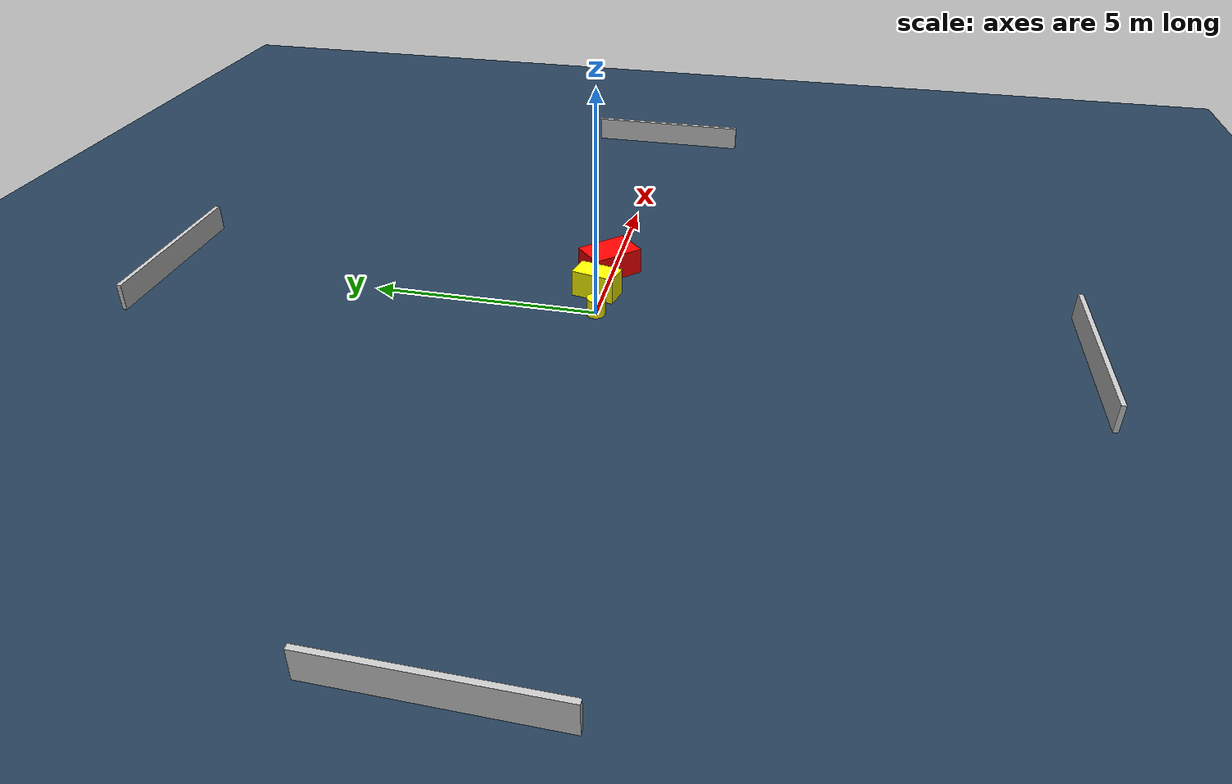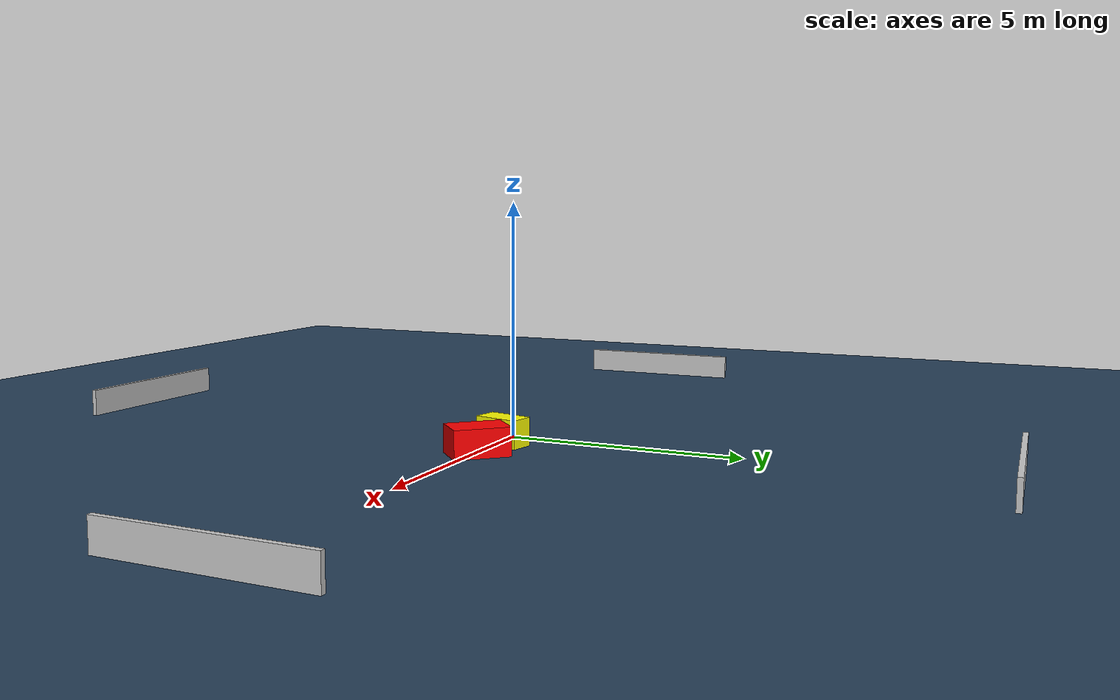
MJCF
<?xml version="1.0" ?>
<mujoco model="generated_environment">
  <option timestep="0.01" integrator="RK4" cone="elliptic"/>
  <default>
    <geom density="1"/>
  </default>
  <asset>
    <texture builtin="gradient" height="3072" name="skybox" rgb1="0.3 0.5 0.7" rgb2="0 0 0" type="skybox" width="512"/>
    <texture builtin="checker" height="300" name="groundplane" rgb1="0.2 0.3 0.4" rgb2="0.1 0.2 0.3" type="2d" width="300"/>
    <material name="groundplane" reflectance="0.2" texrepeat="5 5" texture="groundplane"/>
  </asset>
  <worldbody>
    <light dir="0 0 -1" directional="true" pos="0 0 1.5"/>
    <geom condim="3" friction="0.5 0.005 0.001" material="groundplane" name="floor" pos="0 0 0" size="0 0 0.05" type="plane"/>
    <body name="walls">
      <geom name="wall_1" condim="4" pos="-10.0 0.0 0.3" rgba="0.800000011920929 0.800000011920929 0.800000011920929 1.0" size="0.05 2.0 0.3" type="box"/>
      <geom name="wall_2" condim="4" pos="10.0 0.0 0.3" rgba="0.800000011920929 0.800000011920929 0.800000011920929 1.0" size="0.05 2.0 0.3" type="box"/>
      <geom name="wall_3" condim="4" pos="0.0 -10.0 0.3" rgba="0.800000011920929 0.800000011920929 0.800000011920929 1.0" size="2.0 0.05 0.3" type="box"/>
      <geom name="wall_4" condim="4" pos="0.0 10.0 0.3" rgba="0.800000011920929 0.800000011920929 0.800000011920929 1.0" size="2.0 0.05 0.3" type="box"/>
    </body>
    <body name="robot">
      <joint name="joint_x" type="slide" pos="0 0 0" axis="1 0 0"/>
      <joint name="joint_y" type="slide" pos="0 0 0" axis="0 1 0"/>
      <geom name="robot" type="cylinder" pos="0.0 0.0 0.2" size="0.2 0.2 0.0" mass="5.0" friction="1.0 0.005 0.0001" condim="4" rgba="1.0 1.0 0.0 1.0"/>
    </body>
    <body name="obstacle_1_movable">
      <geom name="obstacle_1_movable" condim="4" pos="0.8362878140445291 0.15729208732896033 0.3" euler="0 0 167.5913839722097" friction="0.0 0.005 0.001" rgba="1.0 1.0 0.0 1.0" size="0.27114316262951743 0.4871852856598842 0.3" type="box" mass="0.1"/>
      <joint type="free"/>
    </body>
    <body name="obstacle_2_static">
      <geom name="obstacle_2_static" condim="4" pos="1.8869372697396756 0.09408422446323599 0.3" euler="0 0 313.49715899185213" friction="0.0 0.005 0.001" rgba="1.0 0.0 0.0 1.0" size="0.5978367709359825 0.39679648734559086 0.3" type="box"/>
    </body>
  </worldbody>
  <actuator>
    <motor name="actuator_x" joint="joint_x" gear="1" ctrlrange="-1 1"/>
    <motor name="actuator_y" joint="joint_y" gear="1" ctrlrange="-1 1"/>
  </actuator>
</mujoco>
